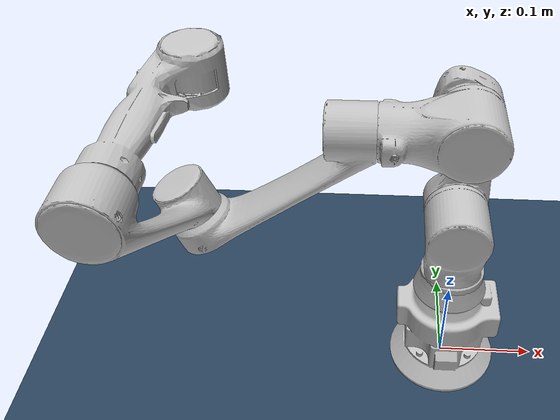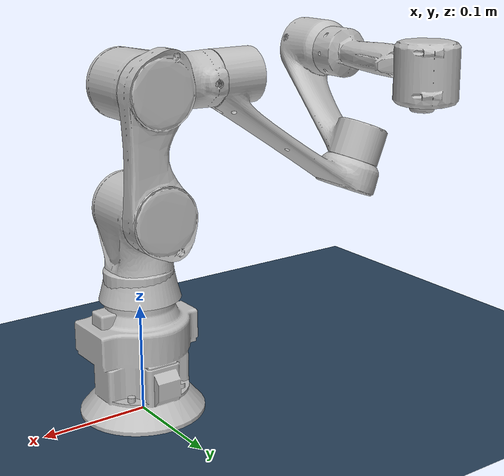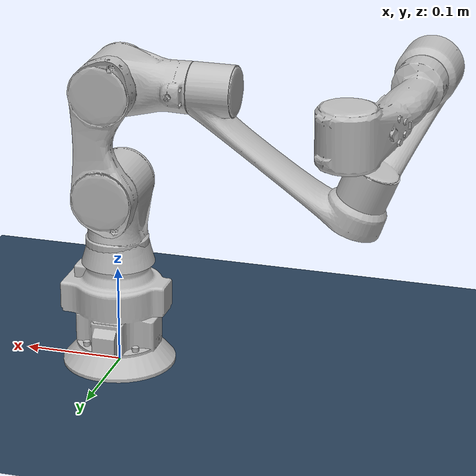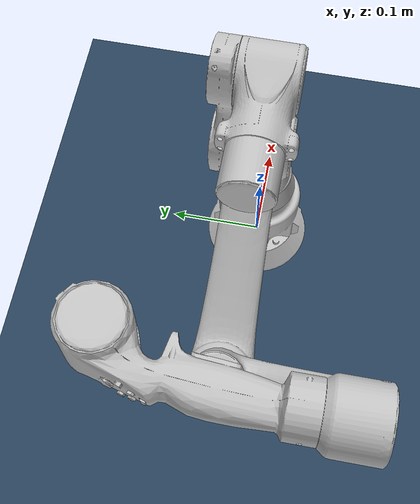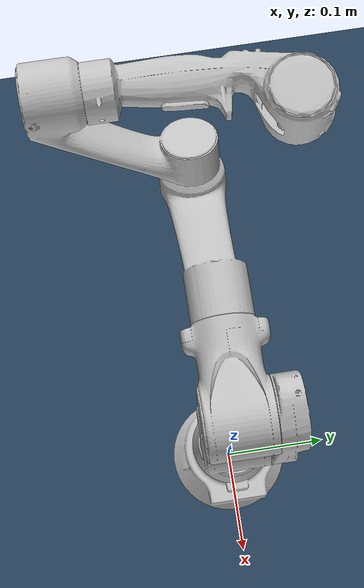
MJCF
<?xml version='1.0' encoding='utf-8'?>
<mujoco model="nexus-arm-v15-right">
  <option timestep="0.002" gravity="0 0 -9.81" />
  <visual>
    <headlight ambient="0.5 0.5 0.5" />
  </visual>
  <asset>
    <texture name="grid" type="2d" builtin="checker" width="512" height="512" rgb1="0.1 0.2 0.3" rgb2="0.2 0.3 0.4" />
    <material name="grid" texture="grid" texrepeat="1 1" texuniform="true" reflectance="0.2" />
  </asset>
  <include file="nexus-arm-right_base.xml" />
  <worldbody>
    <light name="top" pos="0 0 2" dir="0 0 -1" directional="true" />
    <geom name="ground" type="plane" size="0 0 0.05" material="grid" condim="3" />
  </worldbody>
  <actuator>
    <motor name="act_link1_Joint" joint="link1_Joint" gear="1" ctrlrange="-3.5 3.5" forcerange="-3.5 3.5" />
    <motor name="act_link2_Joint" joint="link2_Joint" gear="1" ctrlrange="-9.0 9.0" forcerange="-9.0 9.0" />
    <motor name="act_link3_Joint" joint="link3_Joint" gear="1" ctrlrange="-3.5 3.5" forcerange="-3.5 3.5" />
    <motor name="act_link4_Joint" joint="link4_Joint" gear="1" ctrlrange="-0.8 0.8" forcerange="-0.8 0.8" />
    <motor name="act_link5_Joint" joint="link5_Joint" gear="1" ctrlrange="-0.8 0.8" forcerange="-0.8 0.8" />
    <motor name="act_link6_Joint" joint="link6_Joint" gear="1" ctrlrange="-0.8 0.8" forcerange="-0.8 0.8" />
    <motor name="act_gripper_Joint" joint="gripper_Joint" gear="1" ctrlrange="-0.8 0.8" forcerange="-0.8 0.8" />
  </actuator>
</mujoco>

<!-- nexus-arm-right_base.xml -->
<mujoco model="nexus-arm-v15-right">
  <compiler angle="radian" meshdir="../meshes" />
  <asset>
    <mesh name="base_link" content_type="model/stl" file="base_link.STL" />
    <mesh name="link1_Link" content_type="model/stl" file="link1_Link.STL" />
    <mesh name="link2_Link" content_type="model/stl" file="link2_Link.STL" />
    <mesh name="link3_Link" content_type="model/stl" file="link3_Link.STL" />
    <mesh name="link4_Link" content_type="model/stl" file="link4_Link.STL" />
    <mesh name="link5_Link" content_type="model/stl" file="link5_Link.STL" />
    <mesh name="link6_Link" content_type="model/stl" file="link6_Link.STL" />
    <mesh name="gripper_Link" content_type="model/stl" file="gripper_Link.STL" />
    <mesh name="force_Link" content_type="model/stl" file="force_Link.STL" />
  </asset>
  <worldbody>
    <geom type="mesh" rgba="0.752941 0.752941 0.752941 1" mesh="base_link" contype="0" conaffinity="0" density="0" group="1" />
    <body name="link1_Link" pos="-0.00060482 0 0.13105">
      <inertial pos="-5.21243e-05 -0.00593261 0.0304374" quat="0.703605 0.0831237 -0.0851834 0.700553" mass="0.1" diaginertia="0.000140572 0.000136041 6.47972e-05" />
      <joint name="link1_Joint" pos="0 0 0" axis="0 0 1" range="-1.57 1.57" actuatorfrcrange="-3.5 3.5" damping="0.175" frictionloss="0.035" armature="0.0035" />
      <geom type="mesh" rgba="0.752941 0.752941 0.752941 1" mesh="link1_Link" />
      <body name="link2_Link" pos="-2.36911e-05 -0.014493 0.06">
        <inertial pos="0.000220495 0.03055 0.0525791" quat="0.999744 -0.0107942 -0.00072016 -0.0198603" mass="0.8" diaginertia="0.00276952 0.00271731 0.000390311" />
        <joint name="link2_Joint" pos="0 0 0" axis="0 1 0" range="-1.22 0.7" actuatorfrcrange="-9 9" damping="0.45" frictionloss="0.09" armature="0.009" />
        <geom type="mesh" rgba="0.752941 0.752941 0.752941 1" mesh="link2_Link" />
        <body name="link3_Link" pos="0 0.00425 0.109999">
          <inertial pos="-0.0646027 0.0080423 3.79088e-05" quat="0.0328384 0.706382 -0.0302852 0.70642" mass="0.29" diaginertia="0.00068851 0.00068319 0.00012119" />
          <joint name="link3_Joint" pos="0 0 0" axis="0 1 0" range="-0.79 1.4" actuatorfrcrange="-3.5 3.5" damping="0.175" frictionloss="0.035" armature="0.0035" />
          <geom type="mesh" rgba="0.752941 0.752941 0.752941 1" mesh="link3_Link" />
          <body name="link4_Link" pos="-0.109993 0.01025 0">
            <inertial pos="-0.107366 -5.6761e-05 -0.0796883" quat="0.597467 0.377902 0.377329 0.598203" mass="0.33" diaginertia="0.00153976 0.0014418 0.000217071" />
            <joint name="link4_Joint" pos="0 0 0" axis="1 0 0" range="-1.22 4.36" actuatorfrcrange="-0.8 0.8" damping="0.05" frictionloss="0.01" armature="0.0008" />
            <geom type="mesh" rgba="0.752941 0.752941 0.752941 1" mesh="link4_Link" />
            <body name="link5_Link" pos="-0.14939 0 -0.07391">
              <inertial pos="-0.024187 -0.0891247 0.0585775" quat="0.902879 0.382836 -0.179408 0.0778419" mass="0.37" diaginertia="0.000863331 0.000803316 0.000212513" />
              <joint name="link5_Joint" pos="0 0 0" axis="-0.38268 0 0.923881" range="-4.36 1.22" actuatorfrcrange="-0.8 0.8" damping="0.05" frictionloss="0.01" armature="0.0008" />
              <geom type="mesh" rgba="0.752941 0.752941 0.752941 1" mesh="link5_Link" />
              <body name="link6_Link" pos="-0.030615 -0.08 0.07391">
                <inertial pos="0.021313 0.131774 -0.000873745" quat="0.643337 0.730684 0.0724793 -0.216713" mass="0.315113" diaginertia="0.00135625 0.00134607 0.000142361" />
                <joint name="link6_Joint" pos="0 0 0" axis="0 1 0" range="-1.61 3.97" actuatorfrcrange="-0.8 0.8" damping="0.05" frictionloss="0.01" armature="0.0008" />
                <geom type="mesh" rgba="0.752941 0.752941 0.752941 1" mesh="link6_Link" />
                <geom type="mesh" rgba="0.698039 0.698039 0.698039 1" mesh="force_Link" />
                <body name="gripper_Link" pos="0.032764 0.16888 -0.031841">
                  <inertial pos="0.0101677 -0.00964993 0.0435073" quat="0.193845 0.732298 -0.437021 0.48495" mass="0.015" diaginertia="7.21138e-07 6.91337e-07 1.37525e-07" />
                  <joint name="gripper_Joint" pos="0 0 0" axis="0 0 1" range="-0.63 0" actuatorfrcrange="-0.8 0.8" damping="0.05" frictionloss="0.01" armature="0.0008" />
                  <geom type="mesh" rgba="0.752941 0.752941 0.752941 1" mesh="gripper_Link" />
                </body>
              </body>
            </body>
          </body>
        </body>
      </body>
    </body>
  </worldbody>
</mujoco>
